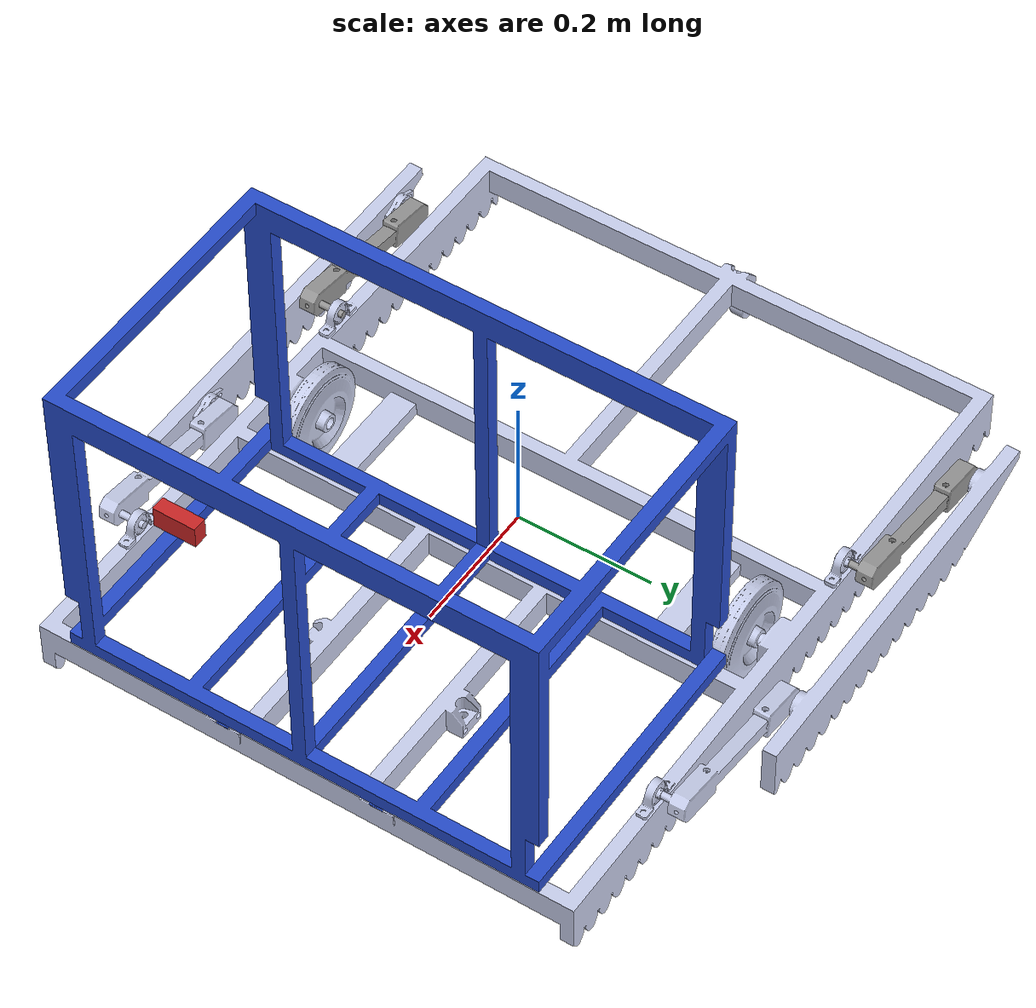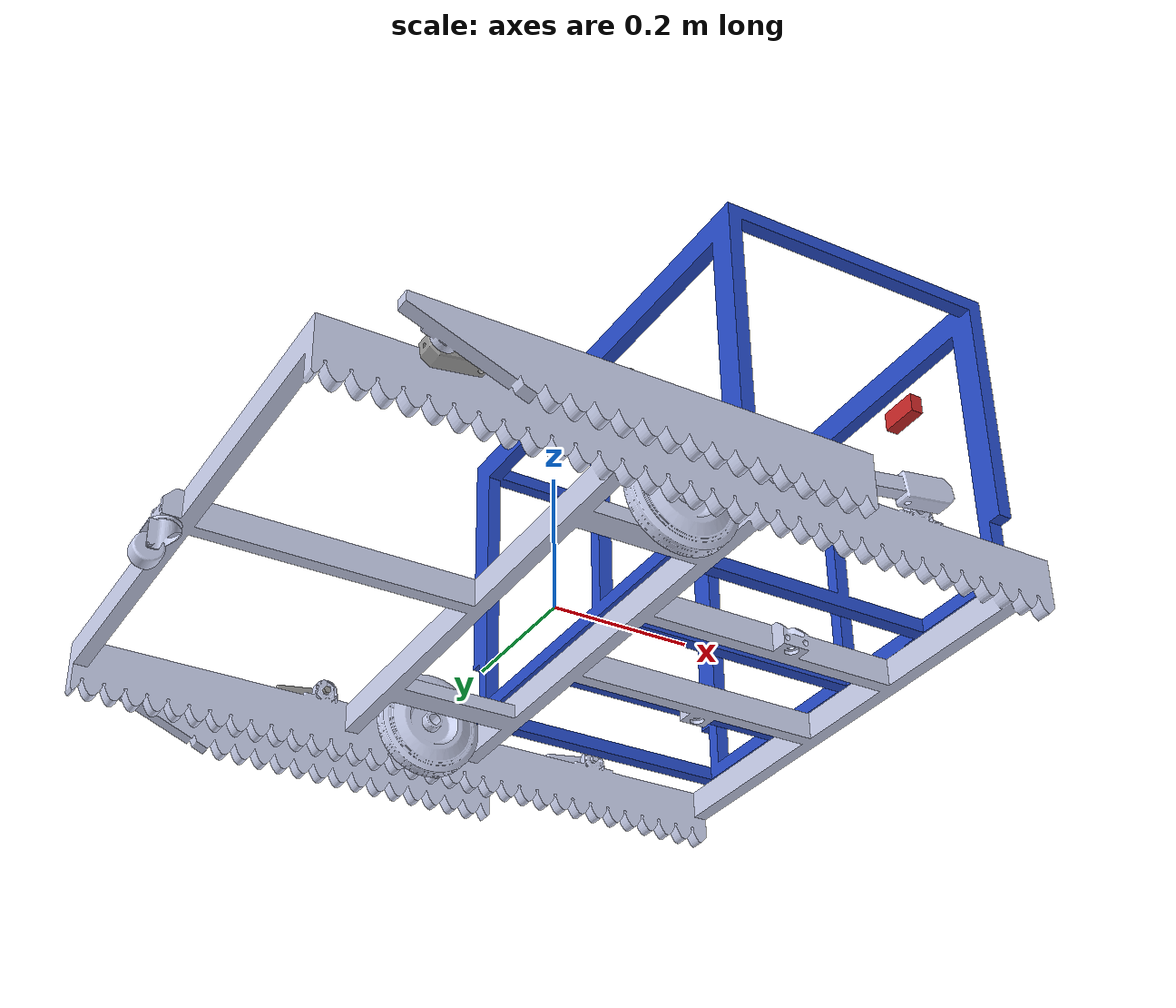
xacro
<?xml version="1.0"?>
<robot xmlns:xacro="http://www.ros.org/wiki/xacro" name="my_sim">

  <link name="base_link">
    <inertial>
      <origin xyz="-0.00354503259395966 1.64922598910877E-08 -0.0275714174379754" rpy="0 0 0" />
      <mass value="6.78274057781771" />
      <inertia ixx="0.38334336762778" ixy="3.10138367273582E-09" ixz="-4.5823272153147E-05" iyy="0.525140168552664" iyz="6.6583744687218E-10" izz="0.906714509360643" />
    </inertial>
    <visual>
      <origin xyz="0 0 0" rpy="0 0 0" />
      <geometry>
        <mesh filename="package://my_sim/meshes/base_link.STL" />
      </geometry>
      <material name=""><color rgba="0.792156862745098 0.819607843137255 0.933333333333333 1" /></material>
    </visual>
    <collision>
      <origin xyz="0 0 0" rpy="0 0 0" />
      <geometry>
        <mesh filename="package://my_sim/meshes/base_link.STL" />
      </geometry>
    </collision>
  </link>

  <link name="left_wheel">
    <inertial>
      <origin xyz="0 1.33226762955019E-15 0.00799999999999956" rpy="0 0 0" />
      <mass value="0.49878272388527" />
      <inertia ixx="0.000734460787133096" ixy="-6.1544862650644E-20" ixz="7.73295837821226E-20" iyy="0.000734460787133096" iyz="-2.06884830507117E-21" izz="0.00138410570285403" />
    </inertial>
    <visual>
      <origin xyz="0 0 0" rpy="0 0 0" />
      <geometry>
        <mesh filename="package://my_sim/meshes/left_wheel.STL" />
      </geometry>
      <material name=""><color rgba="0.796078431372549 0.823529411764706 0.937254901960784 1" /></material>
    </visual>
    <collision>
      <origin xyz="0 0 0" rpy="0 0 0" />
      <geometry>
        <mesh filename="package://my_sim/meshes/left_wheel.STL" />
      </geometry>
    </collision>
  </link>

  <joint name="leftwheel" type="continuous">
    <origin xyz="-0.0177919708029353 0.322461651584687 -0.0274999999999999" rpy="-1.5707963267949 0 0" />
    <parent link="base_link" />
    <child link="left_wheel" />
    <axis xyz="0 0 -1" />
    <limit effort="10" velocity="50" />
    <dynamics damping="0.1" friction="0.02" />
  </joint>

  <link name="right_wheel">
    <inertial>
      <origin xyz="2.22044604925031E-16 1.33226762955019E-15 -0.00800000000000001" rpy="0 0 0" />
      <mass value="0.49878272388527" />
      <inertia ixx="0.000734460787133096" ixy="-2.09326824053297E-20" ixz="8.70760391290352E-20" iyy="0.000734460787133096" iyz="7.18487423434696E-21" izz="0.00138410570285403" />
    </inertial>
    <visual>
      <origin xyz="0 0 0" rpy="0 0 0" />
      <geometry>
        <mesh filename="package://my_sim/meshes/right_wheel.STL" />
      </geometry>
      <material name=""><color rgba="0.796078431372549 0.823529411764706 0.937254901960784 1" /></material>
    </visual>
    <collision>
      <origin xyz="0 0 0" rpy="0 0 0" />
      <geometry>
        <mesh filename="package://my_sim/meshes/right_wheel.STL" />
      </geometry>
    </collision>
  </link>

  <joint name="rightwheel" type="continuous">
    <origin xyz="-0.0177919708029353 -0.322461651584691 -0.0274999999999997" rpy="-1.5707963267949 0 0" />
    <parent link="base_link" />
    <child link="right_wheel" />
    <axis xyz="0 0 1" />
    <limit effort="10" velocity="50" />
    <dynamics damping="0.1" friction="0.02" />
  </joint>

  <link name="rear_caster">
    <inertial>
      <origin xyz="-0.0037104950061766 5.01555225606021E-05 -0.0365904486150335" rpy="0 0 0" />
      <mass value="0.0174787247499813" />
      <inertia ixx="6.16393096918926E-06" ixy="-5.65503084569632E-09" ixz="-1.25291199910808E-06" iyy="5.86637436716775E-06" iyz="1.27361343250995E-08" izz="4.41363584641845E-06" />
    </inertial>
    <visual>
      <origin xyz="0 0 0" rpy="0 0 0" />
      <geometry><mesh filename="package://my_sim/meshes/rear_caster.STL" /></geometry>
      <material name=""><color rgba="0.792156862745098 0.819607843137255 0.933333333333333 1" /></material>
    </visual>
    <collision>
      <origin xyz="0 0 0" rpy="0 0 0" />
      <geometry><mesh filename="package://my_sim/meshes/rear_caster.STL" /></geometry>
    </collision>
  </link>

  <joint name="rearcaster" type="continuous">
    <origin xyz="-0.530291970803071 0 -0.0122000000000001" rpy="0 0 0" />
    <parent link="base_link" />
    <child link="rear_caster" />
    <axis xyz="0 0 1" />
    <dynamics damping="0.1" friction="0.02" />
  </joint>

  <link name="rear_caster_wheel">
    <inertial>
      <origin xyz="-4.84273659573375E-06 1.93265481762683E-06 -6.73028388020747E-07" rpy="0 0 0" />
      <mass value="0.0291885410390134" />
      <inertia ixx="4.18965531573838E-06" ixy="6.26500529157608E-11" ixz="1.02364354017055E-08" iyy="4.18971902010473E-06" iyz="8.70690843632022E-12" izz="5.73096598916081E-06" />
    </inertial>
    <visual>
      <origin xyz="0 0 0" rpy="0 0 0" />
      <geometry><mesh filename="package://my_sim/meshes/rear_caster_wheel.STL" /></geometry>
      <material name=""><color rgba="0.792156862745098 0.819607843137255 0.933333333333333 1" /></material>
    </visual>
    <collision>
      <origin xyz="0 0 0" rpy="0 0 0" />
      <geometry><mesh filename="package://my_sim/meshes/rear_caster_wheel.STL" /></geometry>
    </collision>
  </link>

  <joint name="rearcasterwheel" type="continuous">
    <origin xyz="-0.0188852028678461 0.000125698183635503 -0.0711548485113878" rpy="-1.5707963267949 0 0" />
    <parent link="rear_caster" />
    <child link="rear_caster_wheel" />
    <axis xyz="-0.00665576114394258 0 -0.99997785017649" />
    <dynamics damping="0.1" friction="0.02" />
  </joint>

  <link name="front_left_arm">
    <inertial>
      <origin xyz="-0.11758422137548 0.0184293862668812 0.0192764183551273" rpy="0 0 0" />
      <mass value="0.192234433652185" />
      <inertia ixx="3.39716333713551E-05" ixy="4.4267910742898E-05" ixz="-7.87894797741563E-08" iyy="0.000313496915576437" iyz="1.21798400059112E-08" izz="0.000325658505151572" />
    </inertial>
    <visual>
      <origin xyz="0 0 0" rpy="0 0 0" />
      <geometry><mesh filename="package://my_sim/meshes/front_left_arm.STL" /></geometry>
      <material name=""><color rgba="0.792156862745098 0.819607843137255 0.933333333333333 1" /></material>
    </visual>
    <collision>
      <origin xyz="0 0 0" rpy="0 0 0" />
      <geometry><mesh filename="package://my_sim/meshes/front_left_arm.STL" /></geometry>
    </collision>
  </link>

  <joint name="frontleftarm" type="continuous">
    <origin xyz="0.28721 0.41 0.017" rpy="-1.5708 0 0" />
    <parent link="base_link" />
    <child link="front_left_arm" />
    <axis xyz="0 0 1" />
    <limit effort="236" velocity="2.6" />
    <dynamics damping="0.1" friction="0.02" />
  </joint>

  <link name="left_arm_f">
    <inertial>
      <origin xyz="-0.173234082653462 0.0142015861340897 0.0225869803181442" rpy="0 0 0" />
      <mass value="0.830251572303495" />
      <inertia ixx="0.00012994852387453" ixy="-8.73969121726799E-05" ixz="-7.07031641027359E-11" iyy="0.0132824489337879" iyz="1.80098020085666E-11" izz="0.0133591295785327" />
    </inertial>
    <visual>
      <origin xyz="0 0 0" rpy="0 0 0" />
      <geometry><mesh filename="package://my_sim/meshes/left_arm_f.STL" /></geometry>
      <material name=""><color rgba="0.792156862745098 0.819607843137255 0.933333333333333 1" /></material>
    </visual>
    <collision>
      <origin xyz="0 0 0" rpy="0 0 0" />
      <geometry><mesh filename="package://my_sim/meshes/left_arm_f.STL" /></geometry>
    </collision>
  </link>

  <joint name="leftarmfrontjoint" type="continuous">
    <origin xyz="-0.23718 0.036665 0.0352" rpy="0 0 0" />
    <parent link="front_left_arm" />
    <child link="left_arm_f" />
    <axis xyz="0 0 -1" />
    <mimic joint="frontleftarm" multiplier="-1" offset="0" />
  </joint>

  <link name="front_right_arm">
    <inertial>
      <origin xyz="-0.117660549552164 0.0179356414647501 -0.0192764183520208" rpy="0 0 0" />
      <mass value="0.192234433652185" />
      <inertia ixx="3.39716333713552E-05" ixy="4.42679107428981E-05" ixz="7.87894797741119E-08" iyy="0.000313496915576435" iyz="-1.21798400059071E-08" izz="0.000325658505151571" />
    </inertial>
    <visual>
      <origin xyz="0 0 0" rpy="0 0 0" />
      <geometry><mesh filename="package://my_sim/meshes/front_right_arm.STL" /></geometry>
      <material name=""><color rgba="0.792156862745098 0.819607843137255 0.933333333333333 1" /></material>
    </visual>
    <collision>
      <origin xyz="0 0 0" rpy="0 0 0" />
      <geometry><mesh filename="package://my_sim/meshes/front_right_arm.STL" /></geometry>
    </collision>
  </link>

  <joint name="frontrightarm" type="continuous">
    <origin xyz="0.2872 -0.41 0.017" rpy="-1.5708 0 0" />
    <parent link="base_link" />
    <child link="front_right_arm" />
    <axis xyz="0 0 1" />
    <limit effort="236" velocity="2.6" />
    <dynamics damping="0.1" friction="0.02" />
  </joint>

  <link name="right_arm_f">
    <inertial>
      <origin xyz="-0.173234121501403 0.014201556598754 -0.022586970843187" rpy="0 0 0" />
      <mass value="0.830251250007781" />
      <inertia ixx="0.000129948455524354" ixy="-8.73973895293667E-05" ixz="8.42981758974309E-11" iyy="0.0132824482456701" iyz="-7.01818089981112E-11" izz="0.0133591288850021" />
    </inertial>
    <visual>
      <origin xyz="0 0 0" rpy="0 0 0" />
      <geometry><mesh filename="package://my_sim/meshes/right_arm_f.STL" /></geometry>
      <material name=""><color rgba="0.792156862745098 0.819607843137255 0.933333333333333 1" /></material>
    </visual>
    <collision>
      <origin xyz="0 0 0" rpy="0 0 0" />
      <geometry><mesh filename="package://my_sim/meshes/right_arm_f.STL" /></geometry>
    </collision>
  </link>

  <joint name="frontrightarmjoint" type="continuous">
    <origin xyz="-0.23718 0.036665 -0.0352" rpy="0 0 0" />
    <parent link="front_right_arm" />
    <child link="right_arm_f" />
    <axis xyz="0 0 1" />
    <mimic joint="frontrightarm" multiplier="-1" offset="0" />
  </joint>

  <link name="rear_left_arm">
    <inertial>
      <origin xyz="-0.11758422137548 0.0184293862668817 0.0192764183551275" rpy="0 0 0" />
      <mass value="0.192234433652185" />
      <inertia ixx="3.39716333713552E-05" ixy="4.42679107428981E-05" ixz="-7.87894797741582E-08" iyy="0.000313496915576437" iyz="1.21798400059134E-08" izz="0.000325658505151572" />
    </inertial>
    <visual>
      <origin xyz="0 0 0" rpy="0 0 0" />
      <geometry><mesh filename="package://my_sim/meshes/rear_left_arm.STL" /></geometry>
    </visual>
    <collision>
      <origin xyz="0 0 0" rpy="0 0 0" />
      <geometry><mesh filename="package://my_sim/meshes/rear_left_arm.STL" /></geometry>
    </collision>
  </link>

  <joint name="rearleftarm" type="continuous">
    <origin xyz="-0.15279 0.41 0.018" rpy="-1.5708 0 0" />
    <parent link="base_link" />
    <child link="rear_left_arm" />
    <axis xyz="0 0 1" />
    <mimic joint="frontleftarm" multiplier="1" offset="0" />
  </joint>

  <link name="rear_right_arm">
    <inertial>
      <origin xyz="-0.117660549552164 0.0179356414647504 -0.0192764183520206" rpy="0 0 0" />
      <mass value="0.192234433652184" />
      <inertia ixx="3.39716333713549E-05" ixy="4.42679107428979E-05" ixz="7.87894797744037E-08" iyy="0.000313496915576435" iyz="-1.21798400059525E-08" izz="0.00032565850515157" />
    </inertial>
    <visual>
      <origin xyz="0 0 0" rpy="0 0 0" />
      <geometry><mesh filename="package://my_sim/meshes/rear_right_arm.STL" /></geometry>
    </visual>
    <collision>
      <origin xyz="0 0 0" rpy="0 0 0" />
      <geometry><mesh filename="package://my_sim/meshes/rear_right_arm.STL" /></geometry>
    </collision>
  </link>

  <joint name="rearrightarm" type="continuous">
    <origin xyz="-0.15279 -0.41 0.018" rpy="-1.5708 0 0" />
    <parent link="base_link" />
    <child link="rear_right_arm" />
    <axis xyz="0 0 1" />
    <mimic joint="frontrightarm" multiplier="1" offset="0" />
  </joint>

  <link name="platform">
    <inertial>
      <origin xyz="-0.210980033273781 -0.230327174996455 0.114" rpy="0 0 0" />
      <mass value="4.19622278759594" />
      <inertia ixx="0.313036750912418" ixy="-2.45442859314821E-09" ixz="3.21425440247246E-16" iyy="0.350307662080967" iyz="1.39126816336622E-16" izz="0.121664874796483" />
    </inertial>
    <visual>
      <origin xyz="0 0 0" rpy="0 0 0" />
      <geometry><mesh filename="package://my_sim/meshes/platform.STL" /></geometry>
    </visual>
    <collision>
      <origin xyz="0 0 0" rpy="0 0 0" />
      <geometry><mesh filename="package://my_sim/meshes/platform.STL" /></geometry>
    </collision>
  </link>

  <joint name="platformjoint" type="revolute">
    <origin xyz="0.484389872406691 -0.113000000000171 0.000924541981120797" rpy="-1.5707963267949 0.000638648234763699 0" />
    <parent link="base_link" />
    <child link="platform" />
    <axis xyz="0 0 1" />
    <limit lower="0" upper="0.5236" effort="142" velocity="8" />
    <dynamics damping="0.1" friction="0.02" />
  </joint>

   <joint name="camera_joint" type="fixed">
        <parent link="platform"/>
        <child link="camera_link"/>
        <origin xyz="0.05 -0.43 0" rpy="1.5708 0 0"/>
    </joint>

    <link name="camera_link">
        <visual>
            <geometry>
                <box size="0.020 0.06 0.03"/>
            </geometry>
            <material name="red"/>
        </visual>
    </link>

<gazebo>
    <plugin name='diff_drive' filename='libgazebo_ros_diff_drive.so'>
      <ros>
        <remapping>cmd_vel:=cmd_vel</remapping>
        <remapping>odom:=odom</remapping>
      </ros>

      <left_joint>leftwheel</left_joint>
      <right_joint>rightwheel</right_joint>

      <wheel_separation>0.6449</wheel_separation>

      <wheel_diameter>0.15</wheel_diameter>

      <max_wheel_torque>20</max_wheel_torque>
      <max_wheel_acceleration>1.0</max_wheel_acceleration>

      <publish_odom>true</publish_odom>
      <publish_odom_tf>true</publish_odom_tf>
      <publish_wheel_tf>true</publish_wheel_tf>

      <odometry_frame>odom</odometry_frame>
      <robot_base_frame>base_link</robot_base_frame>
    </plugin>
  </gazebo>

  <gazebo reference="base_link">
    <material>Gazebo/DarkGrey</material>
  </gazebo>

  <gazebo reference="left_wheel">
    <material>Gazebo/Black</material>
    <mu1>1.5</mu1>
    <mu2>1.5</mu2>
    <kp>1000000.0</kp>
    <kd>10.0</kd>
  </gazebo>

  <gazebo reference="right_wheel">
    <material>Gazebo/Black</material>
    <mu1>1.5</mu1>
    <mu2>1.5</mu2>
    <kp>1000000.0</kp>
    <kd>10.0</kd>
  </gazebo>

  <gazebo reference="rear_caster">
    <material>Gazebo/Grey</material>
  </gazebo>

  <gazebo reference="rear_caster_wheel">
    <material>Gazebo/Black</material>
    <mu1>0.01</mu1>
    <mu2>0.01</mu2>
  </gazebo>

  <gazebo reference="front_left_arm"> <material>Gazebo/Grey</material> </gazebo>
  <gazebo reference="front_right_arm"> <material>Gazebo/Grey</material> </gazebo>
  <gazebo reference="rear_left_arm"> <material>Gazebo/Grey</material> </gazebo>
  <gazebo reference="rear_right_arm"> <material>Gazebo/Grey</material> </gazebo>
  <gazebo reference="left_arm_f"> <material>Gazebo/Silver</material> </gazebo>
  <gazebo reference="right_arm_f"> <material>Gazebo/Silver</material> </gazebo>

  <gazebo reference="platform">
    <material>Gazebo/Blue</material>
  </gazebo>

  <gazebo reference="camera_link">
    <material>Gazebo/Red</material>
  </gazebo>
</robot>
